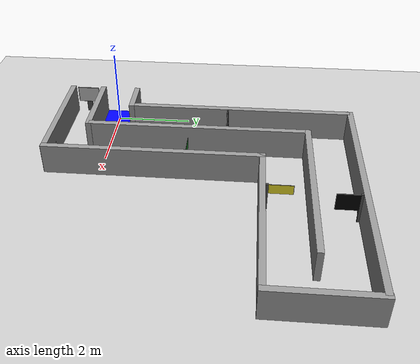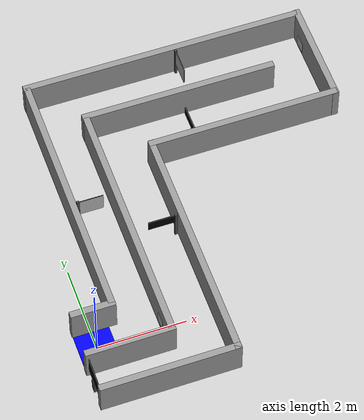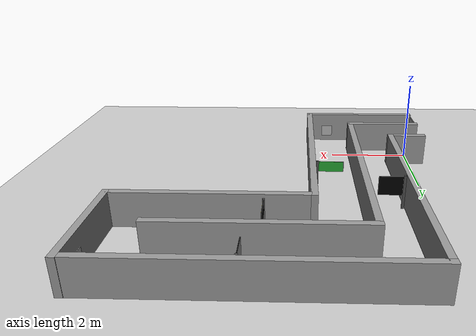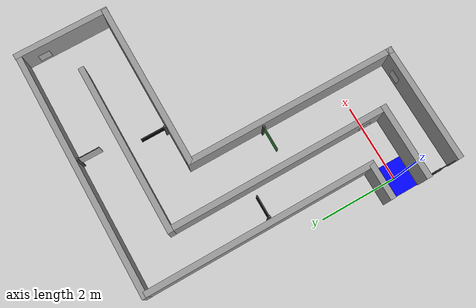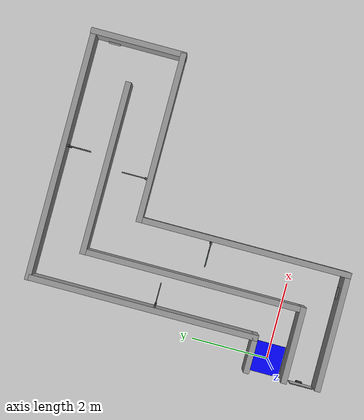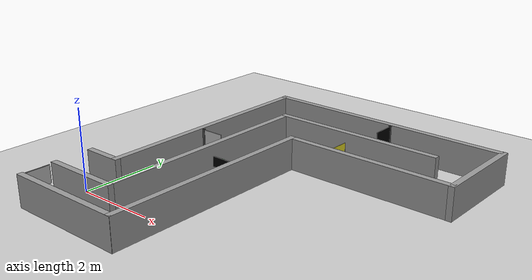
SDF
<?xml version="1.0" ?>
<sdf version="1.7">
  <world name="mission_world">

    <!-- 地面 -->
    <include>
      <uri>model://ground_plane</uri>
    </include>

    <!-- 光源 -->
    <include>
      <uri>model://sun</uri>
    </include>

    <!-- 起點：機器人實際 spawn 點 -->
    <!-- 機器人面朝 +X 方向 -->
    <model name="start_marker">
      <static>true</static>
      <pose>0 0 0.01 0 0 0</pose>
      <link name="link">
        <visual name="visual">
          <geometry>
            <box>
              <size>0.8 0.8 0.02</size>
            </box>
          </geometry>
          <material>
            <ambient>0 0 1 1</ambient>
            <diffuse>0 0 1 1</diffuse>
          </material>
        </visual>
      </link>
    </model>

    <include>
      <uri>model://maze</uri>
      <pose>3.44 1.62 0 0 0 -1.570</pose>
    </include>

    <include>
      <uri>model://stop</uri>
      <pose>-0.368 -0.938 0 0 0 -1.570</pose>
    </include>

    <include>
      <uri>model://slow</uri>
      <pose>3.97702 6.032828 0 0 0 1.570</pose>
    </include>

    <include>
      <uri>model://100</uri>
      <pose>0.929343 3.151955 0 0 0 -3.14</pose>
    </include>

    <include>
      <uri>model://green</uri>
      <pose>2.227261 2.187486 0 0 0 0</pose>
    </include>

    <include>
      <uri>model://yellow</uri>
      <pose>3.679186 4.507156 0 0 0 -1.57</pose>
    </include>

  </world>
</sdf>

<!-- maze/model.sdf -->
<sdf version='1.7'>
  <model name='maze'>
    <link name='sign_left_turn'>
      <pose>1.6 -2.027 0.3 0 -0 0</pose>
      <self_collide>0</self_collide>
      <enable_wind>0</enable_wind>
      <kinematic>0</kinematic>
      <visual name='sign_left_turn'>
        <pose>0 0 0 0 -0 0</pose>
        <geometry>
          <box>
            <size>0.3 0.01 0.3</size>
          </box>
        </geometry>
        <material>
          <script>
            <uri>model://maze/materials/scripts</uri>
            <uri>model://maze/materials/textures</uri>
            <name>Maze/left_turn</name>
          </script>
          <shader type='pixel'/>
        </material>
        <transparency>0</transparency>
        <cast_shadows>1</cast_shadows>
      </visual>
    </link>
    <link name='Wall_0'>
      <pose>1.125 -3.35483 0 0 0 -1.5708</pose>
      <self_collide>0</self_collide>
      <enable_wind>0</enable_wind>
      <kinematic>0</kinematic>
      <gravity>1</gravity>
      <inertial>
        <mass>1</mass>
        <pose>0 0 0 0 -0 0</pose>
        <inertia>
          <ixx>1</ixx>
          <ixy>0</ixy>
          <ixz>0</ixz>
          <iyy>1</iyy>
          <iyz>0</iyz>
          <izz>1</izz>
        </inertia>
      </inertial>
      <visual name='Wall_0_Visual'>
        <pose>0 0 0.4 0 -0 0</pose>
        <geometry>
          <box>
            <size>1 0.15 0.8</size>
          </box>
        </geometry>
        <material>
          <script>
            <uri>file://media/materials/scripts/gazebo.material</uri>
            <name>Gazebo/Grey</name>
          </script>
          <ambient>0.1 0.1 0.1 1</ambient>
          <shader type='pixel'>
            <normal_map>__default__</normal_map>
          </shader>
          <diffuse>0.1 0.1 0.1 1</diffuse>
          <specular>0.01 0.01 0.01 1</specular>
          <emissive>0 0 0 1</emissive>
        </material>
        <meta>
          <layer>0</layer>
        </meta>
        <transparency>0</transparency>
        <cast_shadows>1</cast_shadows>
      </visual>
      <collision name='Wall_0_Collision'>
        <laser_retro>0</laser_retro>
        <max_contacts>10</max_contacts>
        <pose>0 0 0.4 0 -0 0</pose>
        <geometry>
          <box>
            <size>1 0.15 0.8</size>
          </box>
        </geometry>
        <surface>
          <friction>
            <ode>
              <mu>1</mu>
              <mu2>1</mu2>
              <fdir1>0 0 0</fdir1>
              <slip1>0</slip1>
              <slip2>0</slip2>
            </ode>
            <torsional>
              <coefficient>1</coefficient>
              <patch_radius>0</patch_radius>
              <surface_radius>0</surface_radius>
              <use_patch_radius>1</use_patch_radius>
              <ode>
                <slip>0</slip>
              </ode>
            </torsional>
          </friction>
          <bounce>
            <restitution_coefficient>0</restitution_coefficient>
            <threshold>1e+06</threshold>
          </bounce>
          <contact>
            <collide_without_contact>0</collide_without_contact>
            <collide_without_contact_bitmask>1</collide_without_contact_bitmask>
            <collide_bitmask>1</collide_bitmask>
            <ode>
              <soft_cfm>0</soft_cfm>
              <soft_erp>0.2</soft_erp>
              <kp>1e+13</kp>
              <kd>1</kd>
              <max_vel>0.01</max_vel>
              <min_depth>0</min_depth>
            </ode>
            <bullet>
              <split_impulse>1</split_impulse>
              <split_impulse_penetration_threshold>-0.01</split_impulse_penetration_threshold>
              <soft_cfm>0</soft_cfm>
              <soft_erp>0.2</soft_erp>
              <kp>1e+13</kp>
              <kd>1</kd>
            </bullet>
          </contact>
        </surface>
      </collision>
    </link>
    <link name='Wall_10'>
      <pose>2.10741 -2.86181 0 0 0 -1.5708</pose>
      <self_collide>0</self_collide>
      <enable_wind>0</enable_wind>
      <kinematic>0</kinematic>
      <gravity>1</gravity>
      <inertial>
        <mass>1</mass>
        <pose>0 0 0 0 -0 0</pose>
        <inertia>
          <ixx>1</ixx>
          <ixy>0</ixy>
          <ixz>0</ixz>
          <iyy>1</iyy>
          <iyz>0</iyz>
          <izz>1</izz>
        </inertia>
      </inertial>
      <visual name='Wall_10_Visual'>
        <pose>0 0 0.4 0 -0 0</pose>
        <geometry>
          <box>
            <size>1.99221 0.15 0.8</size>
          </box>
        </geometry>
        <material>
          <script>
            <uri>file://media/materials/scripts/gazebo.material</uri>
            <name>Gazebo/Grey</name>
          </script>
          <ambient>0.1 0.1 0.1 1</ambient>
          <shader type='pixel'>
            <normal_map>__default__</normal_map>
          </shader>
          <diffuse>0.1 0.1 0.1 1</diffuse>
          <specular>0.01 0.01 0.01 1</specular>
          <emissive>0 0 0 1</emissive>
        </material>
        <meta>
          <layer>0</layer>
        </meta>
        <transparency>0</transparency>
        <cast_shadows>1</cast_shadows>
      </visual>
      <collision name='Wall_10_Collision'>
        <laser_retro>0</laser_retro>
        <max_contacts>10</max_contacts>
        <pose>0 0 0.4 0 -0 0</pose>
        <geometry>
          <box>
            <size>1.99221 0.15 0.8</size>
          </box>
        </geometry>
        <surface>
          <friction>
            <ode>
              <mu>1</mu>
              <mu2>1</mu2>
              <fdir1>0 0 0</fdir1>
              <slip1>0</slip1>
              <slip2>0</slip2>
            </ode>
            <torsional>
              <coefficient>1</coefficient>
              <patch_radius>0</patch_radius>
              <surface_radius>0</surface_radius>
              <use_patch_radius>1</use_patch_radius>
              <ode>
                <slip>0</slip>
              </ode>
            </torsional>
          </friction>
          <bounce>
            <restitution_coefficient>0</restitution_coefficient>
            <threshold>1e+06</threshold>
          </bounce>
          <contact>
            <collide_without_contact>0</collide_without_contact>
            <collide_without_contact_bitmask>1</collide_without_contact_bitmask>
            <collide_bitmask>1</collide_bitmask>
            <ode>
              <soft_cfm>0</soft_cfm>
              <soft_erp>0.2</soft_erp>
              <kp>1e+13</kp>
              <kd>1</kd>
              <max_vel>0.01</max_vel>
              <min_depth>0</min_depth>
            </ode>
            <bullet>
              <split_impulse>1</split_impulse>
              <split_impulse_penetration_threshold>-0.01</split_impulse_penetration_threshold>
              <soft_cfm>0</soft_cfm>
              <soft_erp>0.2</soft_erp>
              <kp>1e+13</kp>
              <kd>1</kd>
            </bullet>
          </contact>
        </surface>
      </collision>
    </link>
    <link name='Wall_13'>
      <pose>-3.639250 0.2305 0.4 0 -0 1.57</pose>
      <self_collide>0</self_collide>
      <enable_wind>0</enable_wind>
      <kinematic>0</kinematic>
      <gravity>1</gravity>
      <inertial>
        <mass>1</mass>
        <pose>0 0 0 0 -0 0</pose>
        <inertia>
          <ixx>1</ixx>
          <ixy>0</ixy>
          <ixz>0</ixz>
          <iyy>1</iyy>
          <iyz>0</iyz>
          <izz>1</izz>
        </inertia>
      </inertial>
      <visual name='Wall_13_Visual'>
        <pose>0 0 0 0 0 0</pose>
        <geometry>
          <box>
            <size>4.5 0.15 0.8</size>
          </box>
        </geometry>
        <material>
          <script>
            <uri>file://media/materials/scripts/gazebo.material</uri>
            <name>Gazebo/Grey</name>
          </script>
          <ambient>0.1 0.1 0.1 1</ambient>
          <shader type='pixel'>
            <normal_map>__default__</normal_map>
          </shader>
          <diffuse>0.1 0.1 0.1 1</diffuse>
          <specular>0.01 0.01 0.01 1</specular>
          <emissive>0 0 0 1</emissive>
        </material>
        <meta>
          <layer>0</layer>
        </meta>
        <transparency>0</transparency>
        <cast_shadows>1</cast_shadows>
      </visual>
      <collision name='Wall_13_Collision'>
        <laser_retro>0</laser_retro>
        <max_contacts>10</max_contacts>
        <pose>0 0 0 0 0 0</pose>
        <geometry>
          <box>
            <size>4.5 0.15 0.8</size>
          </box>
        </geometry>
        <surface>
          <friction>
            <ode>
              <mu>1</mu>
              <mu2>1</mu2>
              <fdir1>0 0 0</fdir1>
              <slip1>0</slip1>
              <slip2>0</slip2>
            </ode>
            <torsional>
              <coefficient>1</coefficient>
              <patch_radius>0</patch_radius>
              <surface_radius>0</surface_radius>
              <use_patch_radius>1</use_patch_radius>
              <ode>
                <slip>0</slip>
              </ode>
            </torsional>
          </friction>
          <bounce>
            <restitution_coefficient>0</restitution_coefficient>
            <threshold>1e+06</threshold>
          </bounce>
          <contact>
            <collide_without_contact>0</collide_without_contact>
            <collide_without_contact_bitmask>1</collide_without_contact_bitmask>
            <collide_bitmask>1</collide_bitmask>
            <ode>
              <soft_cfm>0</soft_cfm>
              <soft_erp>0.2</soft_erp>
              <kp>1e+13</kp>
              <kd>1</kd>
              <max_vel>0.01</max_vel>
              <min_depth>0</min_depth>
            </ode>
            <bullet>
              <split_impulse>1</split_impulse>
              <split_impulse_penetration_threshold>-0.01</split_impulse_penetration_threshold>
              <soft_cfm>0</soft_cfm>
              <soft_erp>0.2</soft_erp>
              <kp>1e+13</kp>
              <kd>1</kd>
            </bullet>
          </contact>
        </surface>
      </collision>
    </link>
    <link name='Wall_16'>
      <pose>-2.4761 1.33727 0.4 0 0 -1.5708</pose>
      <self_collide>0</self_collide>
      <enable_wind>0</enable_wind>
      <kinematic>0</kinematic>
      <gravity>1</gravity>
      <inertial>
        <mass>2.94508</mass>
        <pose>0 0 0 0 -0 0</pose>
        <inertia>
          <ixx>0.162593</ixx>
          <ixy>0</ixy>
          <ixz>0</ixz>
          <iyy>4.9465</iyy>
          <iyz>0</iyz>
          <izz>4.79496</izz>
        </inertia>
      </inertial>
      <visual name='Wall_16_Visual'>
        <pose>0 0 0 0 -0 0</pose>
        <geometry>
          <box>
            <size>4.41758 0.15 0.8</size>
          </box>
        </geometry>
        <material>
          <script>
            <uri>file://media/materials/scripts/gazebo.material</uri>
            <name>Gazebo/Grey</name>
          </script>
          <ambient>0.1 0.1 0.1 1</ambient>
          <shader type='pixel'>
            <normal_map>__default__</normal_map>
          </shader>
          <diffuse>0.1 0.1 0.1 1</diffuse>
          <specular>0.01 0.01 0.01 1</specular>
          <emissive>0 0 0 1</emissive>
        </material>
        <meta>
          <layer>0</layer>
        </meta>
        <transparency>0</transparency>
        <cast_shadows>1</cast_shadows>
      </visual>
      <collision name='Wall_16_Collision'>
        <laser_retro>0</laser_retro>
        <max_contacts>10</max_contacts>
        <pose>0 0 0 0 -0 0</pose>
        <geometry>
          <box>
            <size>4.41758 0.15 0.8</size>
          </box>
        </geometry>
        <surface>
          <friction>
            <ode>
              <mu>1</mu>
              <mu2>1</mu2>
              <fdir1>0 0 0</fdir1>
              <slip1>0</slip1>
              <slip2>0</slip2>
            </ode>
            <torsional>
              <coefficient>1</coefficient>
              <patch_radius>0</patch_radius>
              <surface_radius>0</surface_radius>
              <use_patch_radius>1</use_patch_radius>
              <ode>
                <slip>0</slip>
              </ode>
            </torsional>
          </friction>
          <bounce>
            <restitution_coefficient>0</restitution_coefficient>
            <threshold>1e+06</threshold>
          </bounce>
          <contact>
            <collide_without_contact>0</collide_without_contact>
            <collide_without_contact_bitmask>1</collide_without_contact_bitmask>
            <collide_bitmask>1</collide_bitmask>
            <ode>
              <soft_cfm>0</soft_cfm>
              <soft_erp>0.2</soft_erp>
              <kp>1e+13</kp>
              <kd>1</kd>
              <max_vel>0.01</max_vel>
              <min_depth>0</min_depth>
            </ode>
            <bullet>
              <split_impulse>1</split_impulse>
              <split_impulse_penetration_threshold>-0.01</split_impulse_penetration_threshold>
              <soft_cfm>0</soft_cfm>
              <soft_erp>0.2</soft_erp>
              <kp>1e+13</kp>
              <kd>1</kd>
            </bullet>
          </contact>
        </surface>
      </collision>
    </link>
    <link name='Wall_18'>
      <pose>0.2504 -0.796785 0 0 -0 0</pose>
      <self_collide>0</self_collide>
      <enable_wind>0</enable_wind>
      <kinematic>0</kinematic>
      <gravity>1</gravity>
      <inertial>
        <mass>1.31959</mass>
        <pose>0 0 0 0 -0 0</pose>
        <inertia>
          <ixx>0.0728525</ixx>
          <ixy>0</ixy>
          <ixz>0</ixz>
          <iyy>3.52912</iyy>
          <iyz>0</iyz>
          <izz>3.46121</izz>
        </inertia>
      </inertial>
      <visual name='Wall_18_Visual'>
        <pose>0 0 0.4 0 -0 0</pose>
        <geometry>
          <box>
            <size>5.60828 0.15 0.8</size>
          </box>
        </geometry>
        <material>
          <script>
            <uri>file://media/materials/scripts/gazebo.material</uri>
            <name>Gazebo/Grey</name>
          </script>
          <ambient>0.1 0.1 0.1 1</ambient>
          <shader type='pixel'>
            <normal_map>__default__</normal_map>
          </shader>
          <diffuse>0.1 0.1 0.1 1</diffuse>
          <specular>0.01 0.01 0.01 1</specular>
          <emissive>0 0 0 1</emissive>
        </material>
        <meta>
          <layer>0</layer>
        </meta>
        <transparency>0</transparency>
        <cast_shadows>1</cast_shadows>
      </visual>
      <collision name='Wall_18_Collision'>
        <laser_retro>0</laser_retro>
        <max_contacts>10</max_contacts>
        <pose>0 0 0.4 0 -0 0</pose>
        <geometry>
          <box>
            <size>5.60828 0.15 0.8</size>
          </box>
        </geometry>
        <surface>
          <friction>
            <ode>
              <mu>1</mu>
              <mu2>1</mu2>
              <fdir1>0 0 0</fdir1>
              <slip1>0</slip1>
              <slip2>0</slip2>
            </ode>
            <torsional>
              <coefficient>1</coefficient>
              <patch_radius>0</patch_radius>
              <surface_radius>0</surface_radius>
              <use_patch_radius>1</use_patch_radius>
              <ode>
                <slip>0</slip>
              </ode>
            </torsional>
          </friction>
          <bounce>
            <restitution_coefficient>0</restitution_coefficient>
            <threshold>1e+06</threshold>
          </bounce>
          <contact>
            <collide_without_contact>0</collide_without_contact>
            <collide_without_contact_bitmask>1</collide_without_contact_bitmask>
            <collide_bitmask>1</collide_bitmask>
            <ode>
              <soft_cfm>0</soft_cfm>
              <soft_erp>0.2</soft_erp>
              <kp>1e+13</kp>
              <kd>1</kd>
              <max_vel>0.01</max_vel>
              <min_depth>0</min_depth>
            </ode>
            <bullet>
              <split_impulse>1</split_impulse>
              <split_impulse_penetration_threshold>-0.01</split_impulse_penetration_threshold>
              <soft_cfm>0</soft_cfm>
              <soft_erp>0.2</soft_erp>
              <kp>1e+13</kp>
              <kd>1</kd>
            </bullet>
          </contact>
        </surface>
      </collision>
    </link>
    <link name='Wall_2'>
      <pose>-0.925001 -2.92983 0 0 -0 3.14159</pose>
      <self_collide>0</self_collide>
      <enable_wind>0</enable_wind>
      <kinematic>0</kinematic>
      <gravity>1</gravity>
      <inertial>
        <mass>1</mass>
        <pose>0 0 0 0 -0 0</pose>
        <inertia>
          <ixx>1</ixx>
          <ixy>0</ixy>
          <ixz>0</ixz>
          <iyy>1</iyy>
          <iyz>0</iyz>
          <izz>1</izz>
        </inertia>
      </inertial>
      <visual name='Wall_2_Visual'>
        <pose>0.88 0 0.4 0 -0 0</pose>
        <geometry>
          <box>
            <size>6 0.15 0.8</size>
          </box>
        </geometry>
        <material>
          <script>
            <uri>file://media/materials/scripts/gazebo.material</uri>
            <name>Gazebo/Grey</name>
          </script>
          <ambient>0.1 0.1 0.1 1</ambient>
          <shader type='pixel'>
            <normal_map>__default__</normal_map>
          </shader>
          <diffuse>0.1 0.1 0.1 1</diffuse>
          <specular>0.01 0.01 0.01 1</specular>
          <emissive>0 0 0 1</emissive>
        </material>
        <meta>
          <layer>0</layer>
        </meta>
        <transparency>0</transparency>
        <cast_shadows>1</cast_shadows>
      </visual>
      <collision name='Wall_2_Collision'>
        <laser_retro>0</laser_retro>
        <max_contacts>10</max_contacts>
        <pose>0.88 0 0.4 0 -0 0</pose>
        <geometry>
          <box>
            <size>6 0.15 0.8</size>
          </box>
        </geometry>
        <surface>
          <friction>
            <ode>
              <mu>1</mu>
              <mu2>1</mu2>
              <fdir1>0 0 0</fdir1>
              <slip1>0</slip1>
              <slip2>0</slip2>
            </ode>
            <torsional>
              <coefficient>1</coefficient>
              <patch_radius>0</patch_radius>
              <surface_radius>0</surface_radius>
              <use_patch_radius>1</use_patch_radius>
              <ode>
                <slip>0</slip>
              </ode>
            </torsional>
          </friction>
          <bounce>
            <restitution_coefficient>0</restitution_coefficient>
            <threshold>1e+06</threshold>
          </bounce>
          <contact>
            <collide_without_contact>0</collide_without_contact>
            <collide_without_contact_bitmask>1</collide_without_contact_bitmask>
            <collide_bitmask>1</collide_bitmask>
            <ode>
              <soft_cfm>0</soft_cfm>
              <soft_erp>0.2</soft_erp>
              <kp>1e+13</kp>
              <kd>1</kd>
              <max_vel>0.01</max_vel>
              <min_depth>0</min_depth>
            </ode>
            <bullet>
              <split_impulse>1</split_impulse>
              <split_impulse_penetration_threshold>-0.01</split_impulse_penetration_threshold>
              <soft_cfm>0</soft_cfm>
              <soft_erp>0.2</soft_erp>
              <kp>1e+13</kp>
              <kd>1</kd>
            </bullet>
          </contact>
        </surface>
      </collision>
    </link>
    <link name='Wall_20'>
      <pose>2.98403 -2.27875 0 0 0 -1.5708</pose>
      <self_collide>0</self_collide>
      <enable_wind>0</enable_wind>
      <kinematic>0</kinematic>
      <gravity>1</gravity>
      <inertial>
        <mass>1.13062</mass>
        <pose>0 0 0 0 -0 0</pose>
        <inertia>
          <ixx>0.0624198</ixx>
          <ixy>0</ixy>
          <ixz>0</ixz>
          <iyy>0.971134</iyy>
          <iyz>0</iyz>
          <izz>0.912954</izz>
        </inertia>
      </inertial>
      <visual name='Wall_20_Visual'>
        <pose>0 0 0.4 0 -0 0</pose>
        <geometry>
          <box>
            <size>3.10922 0.15 0.8</size>
          </box>
        </geometry>
        <material>
          <script>
            <uri>file://media/materials/scripts/gazebo.material</uri>
            <name>Gazebo/Grey</name>
          </script>
          <ambient>0.1 0.1 0.1 1</ambient>
          <shader type='pixel'>
            <normal_map>__default__</normal_map>
          </shader>
          <diffuse>0.1 0.1 0.1 1</diffuse>
          <specular>0.01 0.01 0.01 1</specular>
          <emissive>0 0 0 1</emissive>
        </material>
        <meta>
          <layer>0</layer>
        </meta>
        <transparency>0</transparency>
        <cast_shadows>1</cast_shadows>
      </visual>
      <collision name='Wall_20_Collision'>
        <laser_retro>0</laser_retro>
        <max_contacts>10</max_contacts>
        <pose>0 0 0.4 0 -0 0</pose>
        <geometry>
          <box>
            <size>3.10922 0.15 0.8</size>
          </box>
        </geometry>
        <surface>
          <friction>
            <ode>
              <mu>1</mu>
              <mu2>1</mu2>
              <fdir1>0 0 0</fdir1>
              <slip1>0</slip1>
              <slip2>0</slip2>
            </ode>
            <torsional>
              <coefficient>1</coefficient>
              <patch_radius>0</patch_radius>
              <surface_radius>0</surface_radius>
              <use_patch_radius>1</use_patch_radius>
              <ode>
                <slip>0</slip>
              </ode>
            </torsional>
          </friction>
          <bounce>
            <restitution_coefficient>0</restitution_coefficient>
            <threshold>1e+06</threshold>
          </bounce>
          <contact>
            <collide_without_contact>0</collide_without_contact>
            <collide_without_contact_bitmask>1</collide_without_contact_bitmask>
            <collide_bitmask>1</collide_bitmask>
            <ode>
              <soft_cfm>0</soft_cfm>
              <soft_erp>0.2</soft_erp>
              <kp>1e+13</kp>
              <kd>1</kd>
              <max_vel>0.01</max_vel>
              <min_depth>0</min_depth>
            </ode>
            <bullet>
              <split_impulse>1</split_impulse>
              <split_impulse_penetration_threshold>-0.01</split_impulse_penetration_threshold>
              <soft_cfm>0</soft_cfm>
              <soft_erp>0.2</soft_erp>
              <kp>1e+13</kp>
              <kd>1</kd>
            </bullet>
          </contact>
        </surface>
      </collision>
    </link>
    <link name='Wall_7'>
      <pose>-3.648 3.5 0.4 0 -0 0</pose>
      <self_collide>0</self_collide>
      <enable_wind>0</enable_wind>
      <kinematic>0</kinematic>
      <gravity>1</gravity>
      <inertial>
        <mass>1</mass>
        <pose>0 0 0 0 -0 0</pose>
        <inertia>
          <ixx>1</ixx>
          <ixy>0</ixy>
          <ixz>0</ixz>
          <iyy>1</iyy>
          <iyz>0</iyz>
          <izz>1</izz>
        </inertia>
      </inertial>
      <visual name='Wall_7_Visual'>
        <pose>0 0 0 0 0 0</pose>
        <geometry>
          <box>
            <size>2.5 0.15 0.8</size>
          </box>
        </geometry>
        <material>
          <script>
            <uri>file://media/materials/scripts/gazebo.material</uri>
            <name>Gazebo/Grey</name>
          </script>
          <ambient>0.1 0.1 0.1 1</ambient>
          <shader type='pixel'>
            <normal_map>__default__</normal_map>
          </shader>
          <diffuse>0.1 0.1 0.1 1</diffuse>
          <specular>0.01 0.01 0.01 1</specular>
          <emissive>0 0 0 1</emissive>
        </material>
        <meta>
          <layer>0</layer>
        </meta>
        <transparency>0</transparency>
        <cast_shadows>1</cast_shadows>
      </visual>
      <collision name='Wall_7_Collision'>
        <laser_retro>0</laser_retro>
        <max_contacts>10</max_contacts>
        <pose>0 0 0 0 0 0</pose>
        <geometry>
          <box>
            <size>2.5 0.15 0.8</size>
          </box>
        </geometry>
        <surface>
          <friction>
            <ode>
              <mu>1</mu>
              <mu2>1</mu2>
              <fdir1>0 0 0</fdir1>
              <slip1>0</slip1>
              <slip2>0</slip2>
            </ode>
            <torsional>
              <coefficient>1</coefficient>
              <patch_radius>0</patch_radius>
              <surface_radius>0</surface_radius>
              <use_patch_radius>1</use_patch_radius>
              <ode>
                <slip>0</slip>
              </ode>
            </torsional>
          </friction>
          <bounce>
            <restitution_coefficient>0</restitution_coefficient>
            <threshold>1e+06</threshold>
          </bounce>
          <contact>
            <collide_without_contact>0</collide_without_contact>
            <collide_without_contact_bitmask>1</collide_without_contact_bitmask>
            <collide_bitmask>1</collide_bitmask>
            <ode>
              <soft_cfm>0</soft_cfm>
              <soft_erp>0.2</soft_erp>
              <kp>1e+13</kp>
              <kd>1</kd>
              <max_vel>0.01</max_vel>
              <min_depth>0</min_depth>
            </ode>
            <bullet>
              <split_impulse>1</split_impulse>
              <split_impulse_penetration_threshold>-0.01</split_impulse_penetration_threshold>
              <soft_cfm>0</soft_cfm>
              <soft_erp>0.2</soft_erp>
              <kp>1e+13</kp>
              <kd>1</kd>
            </bullet>
          </contact>
        </surface>
      </collision>
    </link>
    <link name='Wall_9'>
      <pose>-0.75 -1.94083 0.4 0 -0 0</pose>
      <self_collide>0</self_collide>
      <enable_wind>0</enable_wind>
      <kinematic>0</kinematic>
      <gravity>1</gravity>
      <inertial>
        <mass>1</mass>
        <pose>0 0 0 0 -0 0</pose>
        <inertia>
          <ixx>1</ixx>
          <ixy>0</ixy>
          <ixz>0</ixz>
          <iyy>1</iyy>
          <iyz>0</iyz>
          <izz>1</izz>
        </inertia>
      </inertial>
      <visual name='Wall_9_Visual'>
        <pose>0 0 0 0 -0 0</pose>
        <geometry>
          <box>
            <size>5.7 0.15 0.8</size>
          </box>
        </geometry>
        <material>
          <script>
            <uri>file://media/materials/scripts/gazebo.material</uri>
            <name>Gazebo/Grey</name>
          </script>
          <ambient>0.1 0.1 0.1 1</ambient>
          <shader type='pixel'>
            <normal_map>__default__</normal_map>
          </shader>
          <diffuse>0.1 0.1 0.1 1</diffuse>
          <specular>0.01 0.01 0.01 1</specular>
          <emissive>0 0 0 1</emissive>
        </material>
        <meta>
          <layer>0</layer>
        </meta>
        <transparency>0</transparency>
        <cast_shadows>1</cast_shadows>
      </visual>
      <collision name='Wall_9_Collision'>
        <laser_retro>0</laser_retro>
        <max_contacts>10</max_contacts>
        <pose>0 0 0 0 -0 0</pose>
        <geometry>
          <box>
            <size>5.7 0.15 0.8</size>
          </box>
        </geometry>
        <surface>
          <friction>
            <ode>
              <mu>1</mu>
              <mu2>1</mu2>
              <fdir1>0 0 0</fdir1>
              <slip1>0</slip1>
              <slip2>0</slip2>
            </ode>
            <torsional>
              <coefficient>1</coefficient>
              <patch_radius>0</patch_radius>
              <surface_radius>0</surface_radius>
              <use_patch_radius>1</use_patch_radius>
              <ode>
                <slip>0</slip>
              </ode>
            </torsional>
          </friction>
          <bounce>
            <restitution_coefficient>0</restitution_coefficient>
            <threshold>1e+06</threshold>
          </bounce>
          <contact>
            <collide_without_contact>0</collide_without_contact>
            <collide_without_contact_bitmask>1</collide_without_contact_bitmask>
            <collide_bitmask>1</collide_bitmask>
            <ode>
              <soft_cfm>0</soft_cfm>
              <soft_erp>0.2</soft_erp>
              <kp>1e+13</kp>
              <kd>1</kd>
              <max_vel>0.01</max_vel>
              <min_depth>0</min_depth>
            </ode>
            <bullet>
              <split_impulse>1</split_impulse>
              <split_impulse_penetration_threshold>-0.01</split_impulse_penetration_threshold>
              <soft_cfm>0</soft_cfm>
              <soft_erp>0.2</soft_erp>
              <kp>1e+13</kp>
              <kd>1</kd>
            </bullet>
          </contact>
        </surface>
      </collision>
    </link>
    <link name='Wall_30'>
      <pose>-4.81570 0.240502 0.4 0 -0 1.57</pose>
      <self_collide>0</self_collide>
      <enable_wind>0</enable_wind>
      <kinematic>0</kinematic>
      <gravity>1</gravity>
      <inertial>
        <mass>1</mass>
        <pose>0 0 0 0 -0 0</pose>
        <inertia>
          <ixx>1</ixx>
          <ixy>0</ixy>
          <ixz>0</ixz>
          <iyy>1</iyy>
          <iyz>0</iyz>
          <izz>1</izz>
        </inertia>
      </inertial>
      <visual name='Wall_30_Visual'>
        <pose>0 0 0 0 -0 0</pose>
        <geometry>
          <box>
            <size>6.5 0.15 0.8</size>
          </box>
        </geometry>
        <material>
          <script>
            <uri>file://media/materials/scripts/gazebo.material</uri>
            <name>Gazebo/Grey</name>
          </script>
          <ambient>0.1 0.1 0.1 1</ambient>
          <shader type='pixel'>
            <normal_map>__default__</normal_map>
          </shader>
          <diffuse>0.1 0.1 0.1 1</diffuse>
          <specular>0.01 0.01 0.01 1</specular>
          <emissive>0 0 0 1</emissive>
        </material>
        <meta>
          <layer>0</layer>
        </meta>
        <transparency>0</transparency>
        <cast_shadows>1</cast_shadows>
      </visual>
      <collision name='Wall_30_Collision'>
        <laser_retro>0</laser_retro>
        <max_contacts>10</max_contacts>
        <pose>0 0 0 0 0 0</pose>
        <geometry>
          <box>
            <size>6.5 0.15 0.8</size>
          </box>
        </geometry>
        <surface>
          <friction>
            <ode>
              <mu>1</mu>
              <mu2>1</mu2>
              <fdir1>0 0 0</fdir1>
              <slip1>0</slip1>
              <slip2>0</slip2>
            </ode>
            <torsional>
              <coefficient>1</coefficient>
              <patch_radius>0</patch_radius>
              <surface_radius>0</surface_radius>
              <use_patch_radius>1</use_patch_radius>
              <ode>
                <slip>0</slip>
              </ode>
            </torsional>
          </friction>
          <bounce>
            <restitution_coefficient>0</restitution_coefficient>
            <threshold>1e+06</threshold>
          </bounce>
          <contact>
            <collide_without_contact>0</collide_without_contact>
            <collide_without_contact_bitmask>1</collide_without_contact_bitmask>
            <collide_bitmask>1</collide_bitmask>
            <ode>
              <soft_cfm>0</soft_cfm>
              <soft_erp>0.2</soft_erp>
              <kp>1e+13</kp>
              <kd>1</kd>
              <max_vel>0.01</max_vel>
              <min_depth>0</min_depth>
            </ode>
            <bullet>
              <split_impulse>1</split_impulse>
              <split_impulse_penetration_threshold>-0.01</split_impulse_penetration_threshold>
              <soft_cfm>0</soft_cfm>
              <soft_erp>0.2</soft_erp>
              <kp>1e+13</kp>
              <kd>1</kd>
            </bullet>
          </contact>
        </surface>
      </collision>
    </link>
    <link name='sign_right_turn'>
      <pose>-4.26683 3.37455 0.355461 0 -0 0</pose>
      <self_collide>0</self_collide>
      <enable_wind>0</enable_wind>
      <kinematic>0</kinematic>
      <visual name='sign_right_turn'>
        <pose>0 0 0 0 -0 0</pose>
        <geometry>
          <box>
            <size>0.3 0.01 0.3</size>
          </box>
        </geometry>
        <material>
          <script>
            <uri>model://maze/materials/scripts</uri>
            <uri>model://maze/materials/textures</uri>
            <name>Maze/right_turn</name>
          </script>
          <shader type='pixel'/>
        </material>
        <transparency>0</transparency>
        <cast_shadows>1</cast_shadows>
      </visual>
    </link>
    <link name='sign_right_turn2'>
      <pose>2.90468 -1.32504 0.3 0 -0 1.57</pose>
      <self_collide>0</self_collide>
      <enable_wind>0</enable_wind>
      <kinematic>0</kinematic>
      <visual name='sign_right_turn2'>
        <pose>0 0 0 0 -0 0</pose>
        <geometry>
          <box>
            <size>0.3 0.01 0.3</size>
          </box>
        </geometry>
        <material>
          <script>
            <uri>model://maze/materials/scripts</uri>
            <uri>model://maze/materials/textures</uri>
            <name>Maze/right_turn</name>
          </script>
          <shader type='pixel'/>
        </material>
        <transparency>0</transparency>
        <cast_shadows>1</cast_shadows>
      </visual>
    </link>
    <static>1</static>
    <allow_auto_disable>1</allow_auto_disable>
  </model>
</sdf>

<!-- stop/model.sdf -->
<sdf version="1.7">
  <model name="Stop">
    <static>true</static>

    <!-- 牌面 -->
    <link name="link">

	  <!-- 黑色底板 -->
	  <visual name="board_base">
		<pose>0 0 0.55 0 0 0</pose>
		<geometry>
		  <box>
		    <size>0.60 0.02 0.45</size> <!-- 厚度稍微有 -->
		  </box>
		</geometry>
		<material>
		  <ambient>0 0 0 1</ambient>
		  <diffuse>0 0 0 1</diffuse>
		</material>
	  </visual>

	  <!-- 貼圖板（前面那層） -->
	  <visual name="board_texture">
		<!-- y +0.011 → 往外一點 -->
		<pose>0 0.011 0.55 0 0 0</pose>

		<geometry>
		  <box>
		    <size>0.58 0.001 0.43</size> <!-- 很薄 -->
		  </box>
		</geometry>

		<material>
		  <script>
		    <uri>model://stop/materials/scripts</uri>
		    <uri>model://stop/materials/textures</uri>
		    <name>Sign/Stop</name>
		  </script>
		</material>
	  </visual>

	  <!-- 支柱 -->
	  <visual name="pole_visual">
		<pose>0 0 0.18 0 0 0</pose>
		<geometry>
		  <box>
		    <size>0.15 0.05 0.30</size>
		  </box>
		</geometry>
		<material>
		  <ambient>0.3 0.3 0.3 1</ambient>
		  <diffuse>0.3 0.3 0.3 1</diffuse>
		</material>
	  </visual>

	</link>
  </model>
</sdf>

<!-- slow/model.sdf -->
<sdf version="1.7">
  <model name="slow">
    <static>true</static>

    <!-- 牌面 -->
    <link name="link">

	  <!-- 黑色底板 -->
	  <visual name="board_base">
		<pose>0 0 0.55 0 0 0</pose>
		<geometry>
		  <box>
		    <size>0.55 0.02 0.45</size> <!-- 厚度稍微有 -->
		  </box>
		</geometry>
		<material>
		  <ambient>0 0 0 1</ambient>
		  <diffuse>0 0 0 1</diffuse>
		</material>
	  </visual>

	  <!-- 貼圖板（前面那層） -->
	  <visual name="board_texture">
		<!-- y +0.011 → 往外一點 -->
		<pose>0 0.011 0.55 0 0 0</pose>

		<geometry>
		  <box>
		    <size>0.55 0.001 0.45</size> <!-- 很薄 -->
		  </box>
		</geometry>

		<material>
		  <script>
		    <uri>model://slow/materials/scripts</uri>
		    <uri>model://slow/materials/textures</uri>
		    <name>Sign/slow</name>
		  </script>
		</material>
	  </visual>

      <!-- 偏右支柱 -->
      <collision name="pole_collision">
        <pose>0.3 0 0.22 0 0 0</pose>
        <geometry>
          <box>
            <size>0.06 0.05 0.44</size>
          </box>
        </geometry>
      </collision>

      <visual name="pole_visual">
        <pose>0.3 0 0.22 0 0 0</pose>
        <geometry>
          <box>
            <size>0.06 0.05 1.15</size>
          </box>
        </geometry>
        <material>
          <ambient>0.3 0.3 0.3 1</ambient>
          <diffuse>0.3 0.3 0.3 1</diffuse>
        </material>
      </visual>

    </link>
  </model>
</sdf>

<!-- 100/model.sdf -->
<sdf version="1.7">
  <model name="100">
    <static>true</static>

    <!-- 牌面 -->
    <link name="link">

	  <!-- 黑色底板 -->
	  <visual name="board_base">
		<pose>0 0 0.55 0 0 0</pose>
		<geometry>
		  <box>
		    <size>0.55 0.02 0.45</size> <!-- 厚度稍微有 -->
		  </box>
		</geometry>
		<material>
		  <ambient>0 0 0 1</ambient>
		  <diffuse>0 0 0 1</diffuse>
		</material>
	  </visual>

	  <!-- 貼圖板（前面那層） -->
	  <visual name="board_texture">
		<!-- y +0.011 → 往外一點 -->
		<pose>0 0.011 0.55 0 0 0</pose>

		<geometry>
		  <box>
		    <size>0.55 0.001 0.45</size> <!-- 很薄 -->
		  </box>
		</geometry>

		<material>
		  <script>
		    <uri>model://100/materials/scripts</uri>
		    <uri>model://100/materials/textures</uri>
		    <name>Sign/100</name>
		  </script>
		</material>
	  </visual>

      <!-- 偏右支柱 -->
      <collision name="pole_collision">
        <pose>0.3 0 0.22 0 0 0</pose>
        <geometry>
          <box>
            <size>0.06 0.05 0.44</size>
          </box>
        </geometry>
      </collision>

      <visual name="pole_visual">
        <pose>0.3 0 0.22 0 0 0</pose>
        <geometry>
          <box>
            <size>0.06 0.05 1.15</size>
          </box>
        </geometry>
        <material>
          <ambient>0.3 0.3 0.3 1</ambient>
          <diffuse>0.3 0.3 0.3 1</diffuse>
        </material>
      </visual>

    </link>
  </model>
</sdf>

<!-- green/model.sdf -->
<sdf version="1.7">
  <model name="green">
    <static>true</static>

    <!-- 牌面 -->
    <link name="link">

	  <!-- 黑色底板 -->
	  <visual name="board_base">
		<pose>-0.03 0 0.58 0 0 0</pose>
		<geometry>
		  <box>
		    <size>0.60 0.02 0.25</size> <!-- 厚度稍微有 -->
		  </box>
		</geometry>
		<material>
		  <ambient>0 0 0 1</ambient>
		  <diffuse>0 0 0 1</diffuse>
		</material>
	  </visual>

	  <!-- 貼圖板（前面那層） -->
	  <visual name="board_texture">
		<!-- y +0.011 → 往外一點 -->
		<pose>-0.03 0.011 0.58 0 0 0</pose>

		<geometry>
		  <box>
		    <size>0.58 0.001 0.25</size> <!-- 很薄 -->
		  </box>
		</geometry>

		<material>
		  <script>
		    <uri>model://green/materials/scripts</uri>
		    <uri>model://green/materials/textures</uri>
		    <name>Sign/green</name>
		  </script>
		</material>
	  </visual>

      <!-- 偏右支柱 -->
      <collision name="pole_collision">
        <pose>0.3 0 0.22 0 0 0</pose>
        <geometry>
          <box>
            <size>0.06 0.05 0.44</size>
          </box>
        </geometry>
      </collision>

      <visual name="pole_visual">
        <pose>0.3 0 0.22 0 0 0</pose>
        <geometry>
          <box>
            <size>0.06 0.05 1</size>
          </box>
        </geometry>
        <material>
          <ambient>0.3 0.3 0.3 1</ambient>
          <diffuse>0.3 0.3 0.3 1</diffuse>
        </material>
      </visual>

    </link>
  </model>
</sdf>

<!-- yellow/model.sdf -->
<sdf version="1.7">
  <model name="yellow">
    <static>true</static>

    <!-- 牌面 -->
    <link name="link">

	  <!-- 黑色底板 -->
	  <visual name="board_base">
		<pose>-0.03 0 0.58 0 0 0</pose>
		<geometry>
		  <box>
		    <size>0.60 0.02 0.25</size> <!-- 厚度稍微有 -->
		  </box>
		</geometry>
		<material>
		  <ambient>0 0 0 1</ambient>
		  <diffuse>0 0 0 1</diffuse>
		</material>
	  </visual>

	  <!-- 貼圖板（前面那層） -->
	  <visual name="board_texture">
		<!-- y +0.011 → 往外一點 -->
		<pose>-0.03 0.011 0.58 0 0 0</pose>

		<geometry>
		  <box>
		    <size>0.58 0.001 0.25</size> <!-- 很薄 -->
		  </box>
		</geometry>

		<material>
		  <script>
		    <uri>model://yellow/materials/scripts</uri>
		    <uri>model://yellow/materials/textures</uri>
		    <name>Sign/yellow</name>
		  </script>
		</material>
	  </visual>

      <!-- 偏右支柱 -->
      <collision name="pole_collision">
        <pose>0.3 0 0.22 0 0 0</pose>
        <geometry>
          <box>
            <size>0.06 0.05 0.44</size>
          </box>
        </geometry>
      </collision>

      <visual name="pole_visual">
        <pose>0.3 0 0.22 0 0 0</pose>
        <geometry>
          <box>
            <size>0.06 0.05 1</size>
          </box>
        </geometry>
        <material>
          <ambient>0.3 0.3 0.3 1</ambient>
          <diffuse>0.3 0.3 0.3 1</diffuse>
        </material>
      </visual>

    </link>
  </model>
</sdf>
